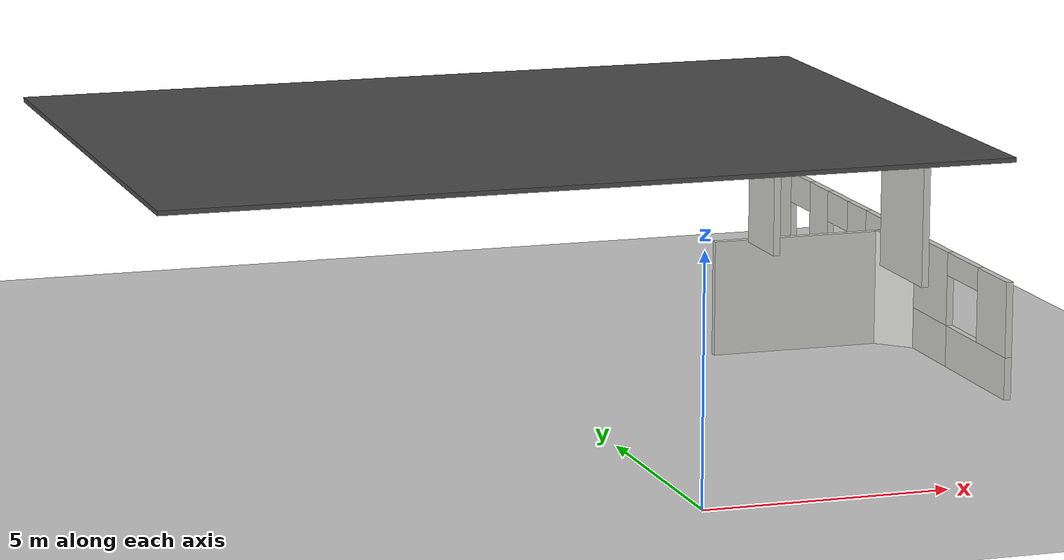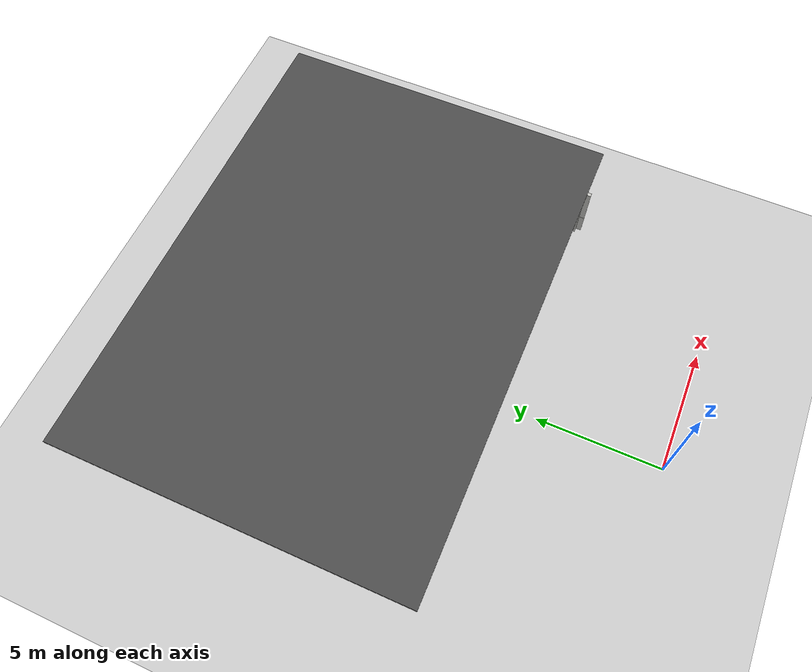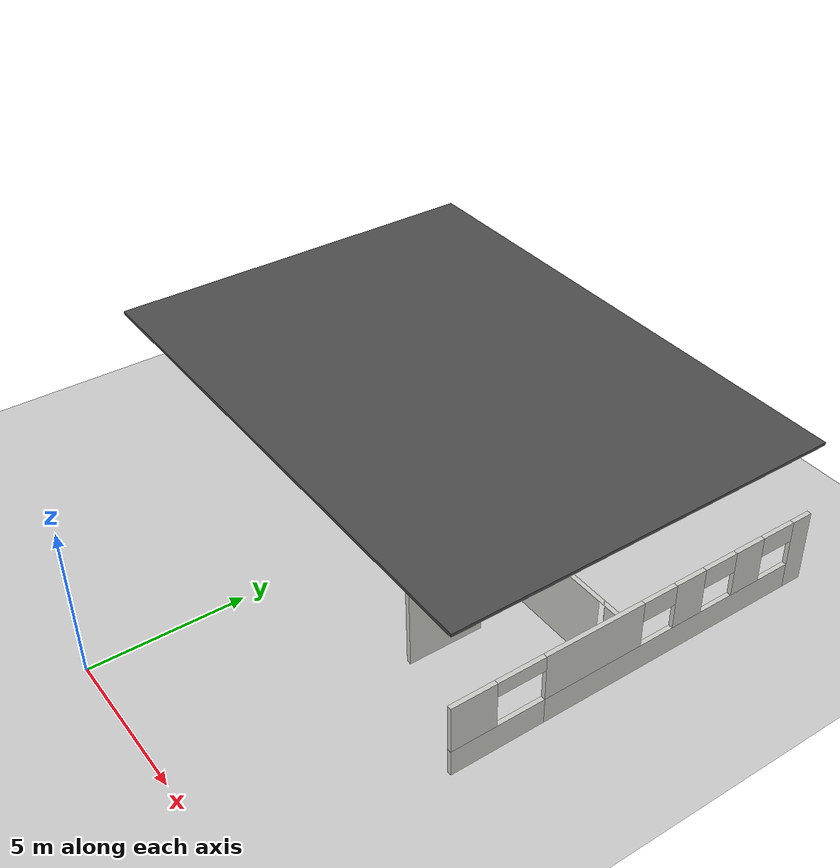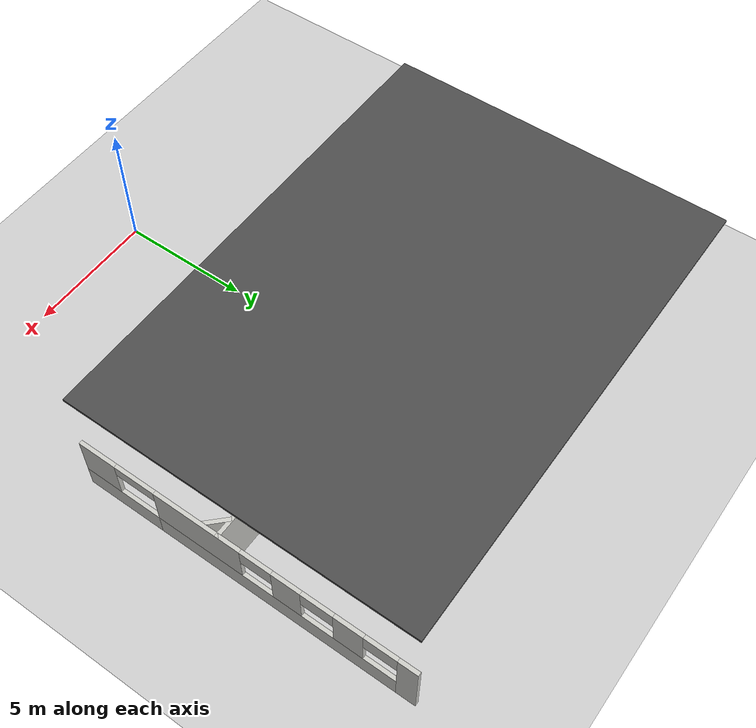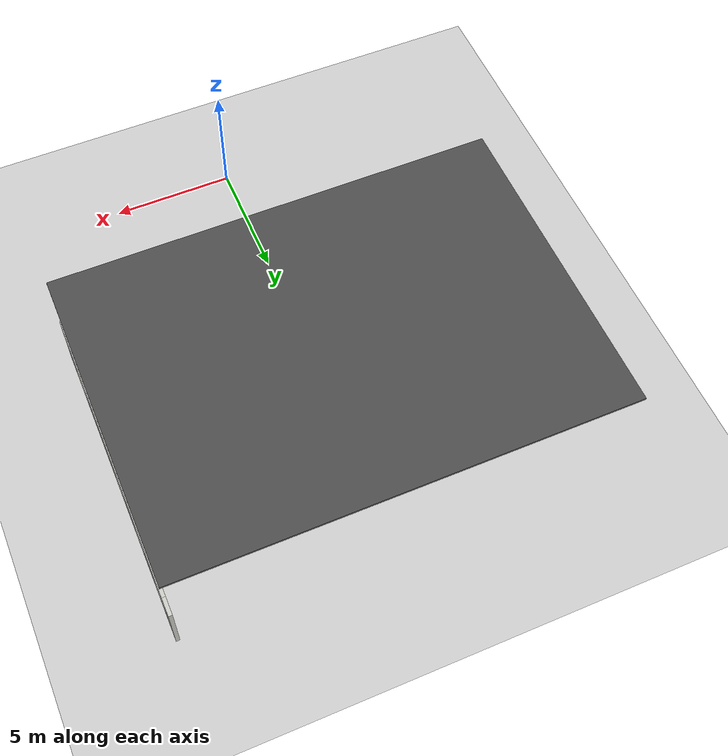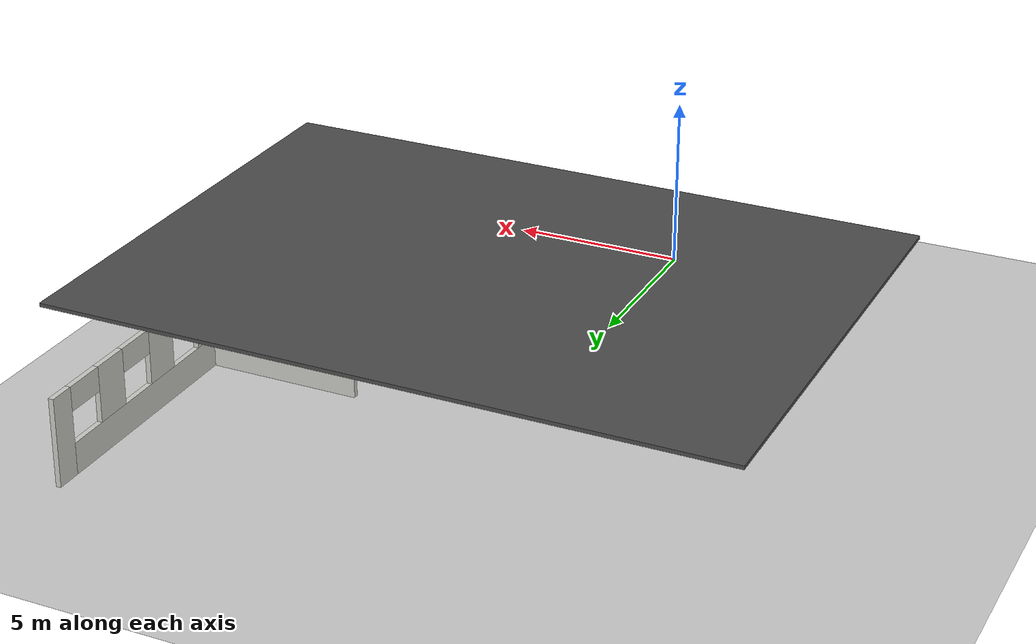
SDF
<sdf version="1.6">
 <world name="default">
  <model name="ground_plane">
   <static>1</static>
   <link name="link">
    <collision name="collision">
     <geometry><plane><normal>0 0 1</normal><size>100 100</size></plane></geometry>
     <surface>
      <contact><collide_bitmask>65535</collide_bitmask></contact>
      <friction><ode><mu>100</mu><mu2>50</mu2></ode></friction>
     </surface>
    </collision>
    <visual name="visual">
     <cast_shadows>0</cast_shadows>
     <geometry><plane><normal>0 0 1</normal><size>100 100</size></plane></geometry>
     <material>
      <script><uri>file://media/materials/scripts/gazebo.material</uri><name>Gazebo/Grey</name></script>
     </material>
    </visual>
   </link>
  </model>
  <model name="asphalt_plane">
   <static>1</static>
   <link name="link">
    <collision name="collision"><geometry><box><size>18.0246 12.9845 0.1</size></box></geometry></collision>
    <visual name="visual">
     <cast_shadows>0</cast_shadows>
     <geometry><box><size>18.0246 12.9845 0.1</size></box></geometry>
     <material>
      <script>
       <uri>model://asphalt_plane/materials/scripts</uri>
       <uri>model://asphalt_plane/materials/textures</uri>
       <name>vrc/asphalt</name>
      </script>
     </material>
    </visual>
   </link>
   <pose>0.009253 12.617 5.05625 0 -0 0</pose>
  </model>
  <model name="Indoor_Scenario1">
   <pose>0.016123 12.6195 0 0 -0 0</pose>
   <link name="Wall_3">
    <pose>8.925 -0 0 0 -0 -1.5708</pose>
    <visual name="Wall_3_Visual_0">
     <pose>-6.13698 0 1.25 0 -0 0</pose>
     <geometry><box><size>0.726032 0.15 2.5</size></box></geometry>
     <material>
      <script><uri>file://media/materials/scripts/gazebo.material</uri><name>Gazebo/CeilingTiled</name></script>
      <ambient>0.647059 0.505882 0.309804 1</ambient>
     </material>
     <meta><layer>0</layer></meta>
    </visual>
    <collision name="Wall_3_Collision_0">
     <geometry><box><size>0.726032 0.15 2.5</size></box></geometry>
     <pose>-6.13698 0 1.25 0 -0 0</pose>
    </collision>
    <visual name="Wall_3_Visual_1">
     <pose>-1.17837 0 0.45 0 -0 0</pose>
     <geometry><box><size>9.1912 0.15 0.9</size></box></geometry>
     <material>
      <script><uri>file://media/materials/scripts/gazebo.material</uri><name>Gazebo/CeilingTiled</name></script>
      <ambient>0.647059 0.505882 0.309804 1</ambient>
     </material>
     <meta><layer>0</layer></meta>
    </visual>
    <collision name="Wall_3_Collision_1">
     <geometry><box><size>9.1912 0.15 0.9</size></box></geometry>
     <pose>-1.17837 0 0.45 0 -0 0</pose>
    </collision>
    <visual name="Wall_3_Visual_2">
     <pose>4.95862 0 0.45 0 -0 0</pose>
     <geometry><box><size>3.08277 0.15 0.9</size></box></geometry>
     <material>
      <script><uri>file://media/materials/scripts/gazebo.material</uri><name>Gazebo/CeilingTiled</name></script>
      <ambient>0.647059 0.505882 0.309804 1</ambient>
     </material>
     <meta><layer>0</layer></meta>
    </visual>
    <collision name="Wall_3_Collision_2">
     <geometry><box><size>3.08277 0.15 0.9</size></box></geometry>
     <pose>4.95862 0 0.45 0 -0 0</pose>
    </collision>
    <visual name="Wall_3_Visual_3">
     <pose>5.75862 0 1.7 0 -0 0</pose>
     <geometry><box><size>1.48277 0.15 1.6</size></box></geometry>
     <material>
      <script><uri>file://media/materials/scripts/gazebo.material</uri><name>Gazebo/CeilingTiled</name></script>
      <ambient>0.647059 0.505882 0.309804 1</ambient>
     </material>
     <meta><layer>0</layer></meta>
    </visual>
    <collision name="Wall_3_Collision_3">
     <geometry><box><size>1.48277 0.15 1.6</size></box></geometry>
     <pose>5.75862 0 1.7 0 -0 0</pose>
    </collision>
    <visual name="Wall_3_Visual_4">
     <pose>-4.02683 0 1.7 0 -0 0</pose>
     <geometry><box><size>1.09427 0.15 1.6</size></box></geometry>
     <material>
      <script><uri>file://media/materials/scripts/gazebo.material</uri><name>Gazebo/CeilingTiled</name></script>
      <ambient>0.647059 0.505882 0.309804 1</ambient>
     </material>
     <meta><layer>0</layer></meta>
    </visual>
    <collision name="Wall_3_Collision_4">
     <geometry><box><size>1.09427 0.15 1.6</size></box></geometry>
     <pose>-4.02683 0 1.7 0 -0 0</pose>
    </collision>
    <visual name="Wall_3_Visual_5">
     <pose>-1.73257 0 1.7 0 -0 0</pose>
     <geometry><box><size>1.09427 0.15 1.6</size></box></geometry>
     <material>
      <script><uri>file://media/materials/scripts/gazebo.material</uri><name>Gazebo/CeilingTiled</name></script>
      <ambient>0.647059 0.505882 0.309804 1</ambient>
     </material>
     <meta><layer>0</layer></meta>
    </visual>
    <collision name="Wall_3_Collision_5">
     <geometry><box><size>1.09427 0.15 1.6</size></box></geometry>
     <pose>-1.73257 0 1.7 0 -0 0</pose>
    </collision>
    <visual name="Wall_3_Visual_6">
     <pose>1.7159 0 1.7 0 -0 0</pose>
     <geometry><box><size>3.40267 0.15 1.6</size></box></geometry>
     <material>
      <script><uri>file://media/materials/scripts/gazebo.material</uri><name>Gazebo/CeilingTiled</name></script>
      <ambient>0.647059 0.505882 0.309804 1</ambient>
     </material>
     <meta><layer>0</layer></meta>
    </visual>
    <collision name="Wall_3_Collision_6">
     <geometry><box><size>3.40267 0.15 1.6</size></box></geometry>
     <pose>1.7159 0 1.7 0 -0 0</pose>
    </collision>
    <visual name="Wall_3_Visual_7">
     <pose>1.7159 0 1.7 0 -0 0</pose>
     <geometry><box><size>3.40267 0.15 1.6</size></box></geometry>
     <material>
      <script><uri>file://media/materials/scripts/gazebo.material</uri><name>Gazebo/CeilingTiled</name></script>
      <ambient>0.647059 0.505882 0.309804 1</ambient>
     </material>
     <meta><layer>0</layer></meta>
    </visual>
    <collision name="Wall_3_Collision_7">
     <geometry><box><size>3.40267 0.15 1.6</size></box></geometry>
     <pose>1.7159 0 1.7 0 -0 0</pose>
    </collision>
    <visual name="Wall_3_Visual_8">
     <pose>-5.17397 0 2.15 0 -0 0</pose>
     <geometry><box><size>1.2 0.15 0.7</size></box></geometry>
     <material>
      <script><uri>file://media/materials/scripts/gazebo.material</uri><name>Gazebo/CeilingTiled</name></script>
      <ambient>0.647059 0.505882 0.309804 1</ambient>
     </material>
     <meta><layer>0</layer></meta>
    </visual>
    <collision name="Wall_3_Collision_8">
     <geometry><box><size>1.2 0.15 0.7</size></box></geometry>
     <pose>-5.17397 0 2.15 0 -0 0</pose>
    </collision>
    <visual name="Wall_3_Visual_9">
     <pose>-2.8797 0 2.15 0 -0 0</pose>
     <geometry><box><size>1.2 0.15 0.7</size></box></geometry>
     <material>
      <script><uri>file://media/materials/scripts/gazebo.material</uri><name>Gazebo/CeilingTiled</name></script>
      <ambient>0.647059 0.505882 0.309804 1</ambient>
     </material>
     <meta><layer>0</layer></meta>
    </visual>
    <collision name="Wall_3_Collision_9">
     <geometry><box><size>1.2 0.15 0.7</size></box></geometry>
     <pose>-2.8797 0 2.15 0 -0 0</pose>
    </collision>
    <visual name="Wall_3_Visual_10">
     <pose>-0.585434 0 2.15 0 -0 0</pose>
     <geometry><box><size>1.2 0.15 0.7</size></box></geometry>
     <material>
      <script><uri>file://media/materials/scripts/gazebo.material</uri><name>Gazebo/CeilingTiled</name></script>
      <ambient>0.647059 0.505882 0.309804 1</ambient>
     </material>
     <meta><layer>0</layer></meta>
    </visual>
    <collision name="Wall_3_Collision_10">
     <geometry><box><size>1.2 0.15 0.7</size></box></geometry>
     <pose>-0.585434 0 2.15 0 -0 0</pose>
    </collision>
    <visual name="Wall_3_Visual_11">
     <pose>4.21723 0 2.25 0 -0 0</pose>
     <geometry><box><size>1.6 0.15 0.5</size></box></geometry>
     <material>
      <script><uri>file://media/materials/scripts/gazebo.material</uri><name>Gazebo/CeilingTiled</name></script>
      <ambient>0.647059 0.505882 0.309804 1</ambient>
     </material>
     <meta><layer>0</layer></meta>
    </visual>
    <collision name="Wall_3_Collision_11">
     <geometry><box><size>1.6 0.15 0.5</size></box></geometry>
     <pose>4.21723 0 2.25 0 -0 0</pose>
    </collision>
    <visual name="Wall_3_Visual_12">
     <pose>4.21723 0 2.25 0 -0 0</pose>
     <geometry><box><size>1.6 0.15 0.5</size></box></geometry>
     <material>
      <script><uri>file://media/materials/scripts/gazebo.material</uri><name>Gazebo/CeilingTiled</name></script>
      <ambient>0.647059 0.505882 0.309804 1</ambient>
     </material>
     <meta><layer>0</layer></meta>
    </visual>
    <collision name="Wall_3_Collision_12">
     <geometry><box><size>1.6 0.15 0.5</size></box></geometry>
     <pose>4.21723 0 2.25 0 -0 0</pose>
    </collision>
   </link>
   <link name="Wall_42">
    <collision name="Wall_42_Collision">
     <geometry><box><size>4.5 0.15 2.5</size></box></geometry>
     <pose>0 0 1.25 0 -0 0</pose>
    </collision>
    <visual name="Wall_42_Visual">
     <pose>0 0 1.25 0 -0 0</pose>
     <geometry><box><size>4.5 0.15 2.5</size></box></geometry>
     <material>
      <script><uri>file://media/materials/scripts/gazebo.material</uri><name>Gazebo/CeilingTiled</name></script>
      <ambient>1 1 1 1</ambient>
     </material>
     <meta><layer>0</layer></meta>
    </visual>
    <pose>6.74627 -0.890762 0 0 -0 3.14159</pose>
   </link>
   <link name="Wall_46">
    <collision name="Wall_46_Collision">
     <geometry><box><size>1 0.15 2.5</size></box></geometry>
     <pose>0 0 1.25 0 -0 0</pose>
    </collision>
    <visual name="Wall_46_Visual">
     <pose>0 0 1.25 0 -0 0</pose>
     <geometry><box><size>1 0.15 2.5</size></box></geometry>
     <material>
      <script><uri>file://media/materials/scripts/gazebo.material</uri><name>Gazebo/CeilingTiled</name></script>
      <ambient>1 1 1 1</ambient>
     </material>
     <meta><layer>0</layer></meta>
    </visual>
    <pose>8.59215 -1.24375 0 0 -0 -0.785398</pose>
   </link>
   <link name="Wall_84">
    <collision name="Wall_84_Collision">
     <geometry><box><size>2.25 0.15 2.5</size></box></geometry>
     <pose>0 0 1.25 0 -0 0</pose>
    </collision>
    <visual name="Wall_84_Visual">
     <pose>0 0 1.25 0 -0 0</pose>
     <geometry><box><size>2.25 0.15 2.5</size></box></geometry>
     <material>
      <script><uri>file://media/materials/scripts/gazebo.material</uri><name>Gazebo/CeilingTiled</name></script>
      <ambient>1 1 1 1</ambient>
     </material>
     <meta><layer>1</layer></meta>
    </visual>
    <pose>7.06066 -5.30727 2.5 0 -0 1.5708</pose>
   </link>
   <link name="Wall_91">
    <collision name="Wall_91_Collision">
     <geometry><box><size>1.5 0.15 2.5</size></box></geometry>
     <pose>0 0 1.25 0 -0 0</pose>
    </collision>
    <visual name="Wall_91_Visual">
     <pose>0 0 1.25 0 -0 0</pose>
     <geometry><box><size>1.5 0.15 2.5</size></box></geometry>
     <material>
      <script><uri>file://media/materials/scripts/gazebo.material</uri><name>Gazebo/CeilingTiled</name></script>
      <ambient>1 1 1 1</ambient>
     </material>
     <meta><layer>1</layer></meta>
    </visual>
    <pose>5.25044 -1.92104 2.5 0 -0 1.5708</pose>
   </link>
   <static>1</static>
  </model>
 </world>
</sdf>
